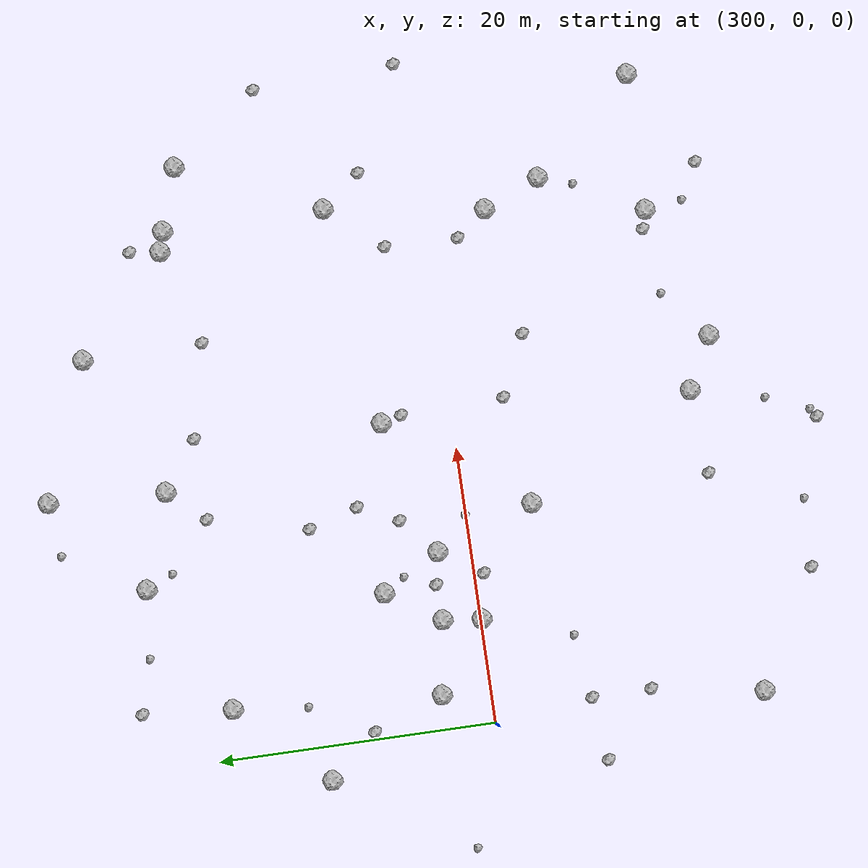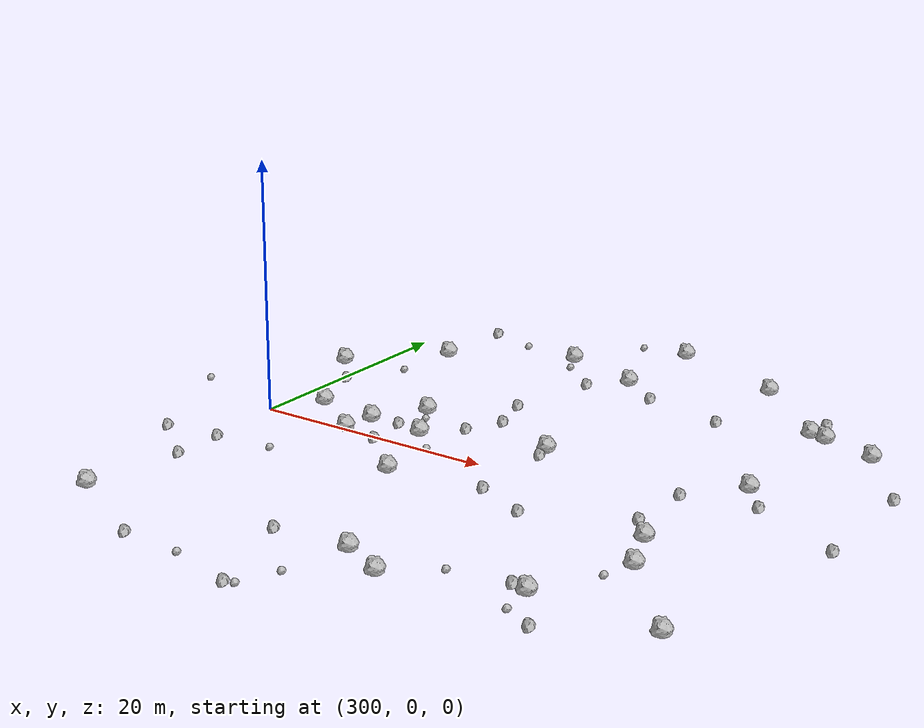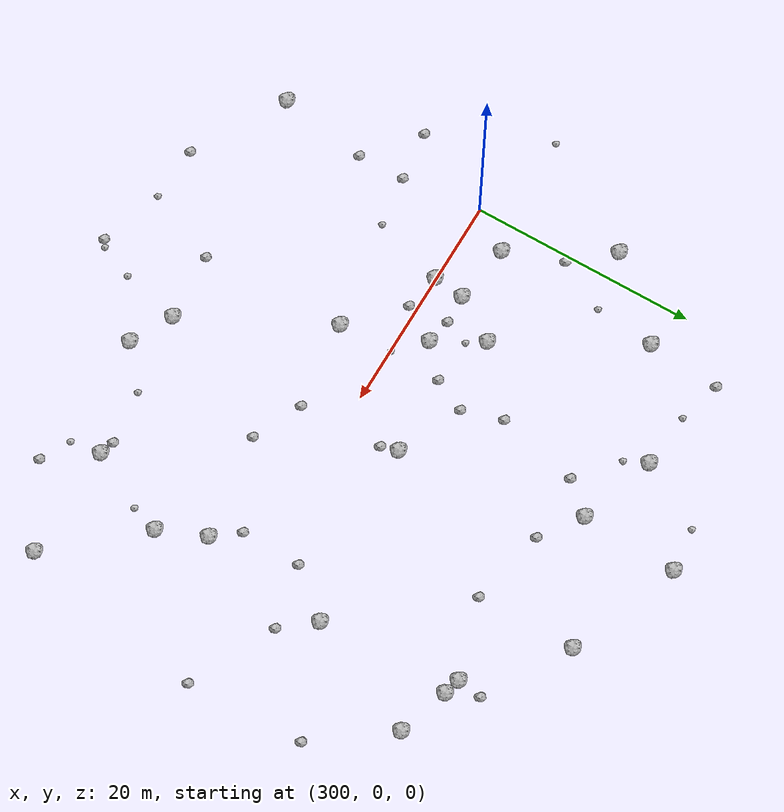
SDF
<sdf version="1.6">
 <world name="default">
  <include><uri>model://sun</uri></include>
  <model name="rock1_8_3">
   <include><uri>model://rock1</uri><pose>325.5360667840325 -19.176329981253016 0.5 0 0 0</pose></include>
  </model>
  <model name="rock1_8_4">
   <include><uri>model://rock1</uri><pose>337.0965668542134 19.217510771627637 0.5 0 0 0</pose></include>
  </model>
  <model name="rock1_8_5">
   <include><uri>model://rock1</uri><pose>297.6387656893085 12.139953859888706 0.5 0 0 0</pose></include>
  </model>
  <model name="rock1_8_6">
   <include><uri>model://rock1</uri><pose>338.6084703517587 -8.564640475429243 0.5 0 0 0</pose></include>
  </model>
  <model name="rock1_8_7">
   <include><uri>model://rock1</uri><pose>338.50501387643857 7.1095136998895185 0.5 0 0 0</pose></include>
  </model>
  <model name="rock1_8_8">
   <include><uri>model://rock1</uri><pose>322.55524619920084 5.112860862548729 0.5 0 0 0</pose></include>
  </model>
  <model name="rock1_8_9">
   <include><uri>model://rock1</uri><pose>330.0800489041929 25.789993478687677 0.5 0 0 0</pose></include>
  </model>
  <model name="rock1_8_10">
   <include><uri>model://rock1</uri><pose>307.91154797282184 2.7123815474220194 0.5 0 0 0</pose></include>
  </model>
  <model name="rock1_8_11">
   <include><uri>model://rock1</uri><pose>338.5454711957595 18.818186615960748 0.5 0 0 0</pose></include>
  </model>
  <model name="rock1_8_12">
   <include><uri>model://rock1</uri><pose>321.79840168310386 -17.268771658646944 0.5 0 0 0</pose></include>
  </model>
  <model name="rock1_8_13">
   <include><uri>model://rock1</uri><pose>315.32713319432776 -4.795768151702678 0.5 0 0 0</pose></include>
  </model>
  <model name="rock1_8_14">
   <include><uri>model://rock1</uri><pose>319.7978172988096 21.159679949803454 0.5 0 0 0</pose></include>
  </model>
  <model name="rock1_8_15">
   <include><uri>model://rock1</uri><pose>299.64401028547604 -19.44883813502558 0.5 0 0 0</pose></include>
  </model>
  <model name="rock1_8_16">
   <include><uri>model://rock1</uri><pose>307.59748977284903 -0.07689318286555391 0.5 0 0 0</pose></include>
  </model>
  <model name="rock1_8_17">
   <include><uri>model://rock1</uri><pose>320.1844808328052 29.647288433401805 0.5 0 0 0</pose></include>
  </model>
  <model name="rock1_8_18">
   <include><uri>model://rock1</uri><pose>345.17324779731337 -16.022033005690435 0.5 0 0 0</pose></include>
  </model>
  <model name="rock1_8_19">
   <include><uri>model://rock1</uri><pose>336.8760851679374 -4.451740943960537 0.5 0 0 0</pose></include>
  </model>
  <model name="rock1_8_20">
   <include><uri>model://rock1</uri><pose>303.6705102415601 18.50020228006747 0.5 0 0 0</pose></include>
  </model>
  <model name="rock1_8_21">
   <include><uri>model://rock1</uri><pose>343.04069357782726 17.36721984499175 0.5 0 0 0</pose></include>
  </model>
  <model name="rock1_8_22">
   <include><uri>model://rock1</uri><pose>335.1999728310768 -15.93421351232158 0.5 0 0 0</pose></include>
  </model>
  <model name="rock1_8_23">
   <include><uri>model://rock1</uri><pose>310.39754033965926 6.5967078686636285 0.5 0 0 0</pose></include>
  </model>
  <model name="rock1_8_24">
   <include><uri>model://rock1</uri><pose>302.58574179871545 3.5104368953219023 0.5 0 0 0</pose></include>
  </model>
  <model name="rock1_8_25">
   <include><uri>model://rock1</uri><pose>312.8036793782777 2.3867870316538173 0.5 0 0 0</pose></include>
  </model>
  <model name="rock1_8_26">
   <include><uri>model://rock1</uri><pose>313.0315651943446 23.462214616910487 0.5 0 0 0</pose></include>
  </model>
  <model name="rock2_8_0">
   <include><uri>model://rock2</uri><pose>296.29768175078283 -7.641451572288432 0.3 0 0 0</pose></include>
  </model>
  <model name="rock2_8_1">
   <include><uri>model://rock2</uri><pose>315.3931679761087 4.812445963037028 0.3 0 0 0</pose></include>
  </model>
  <model name="rock2_8_2">
   <include><uri>model://rock2</uri><pose>318.6273996823745 -26.037837443605806 0.3 0 0 0</pose></include>
  </model>
  <model name="rock2_8_3">
   <include><uri>model://rock2</uri><pose>316.7803391655601 7.723392892719922 0.3 0 0 0</pose></include>
  </model>
  <model name="rock2_8_4">
   <include><uri>model://rock2</uri><pose>335.07898993227315 -2.221460494222349 0.3 0 0 0</pose></include>
  </model>
  <model name="rock2_8_5">
   <include><uri>model://rock2</uri><pose>335.1779027105888 3.1095033278067774 0.3 0 0 0</pose></include>
  </model>
  <model name="rock2_8_6">
   <include><uri>model://rock2</uri><pose>307.93859600072415 -24.068155416894854 0.3 0 0 0</pose></include>
  </model>
  <model name="rock2_8_7">
   <include><uri>model://rock2</uri><pose>315.68087444779087 -17.728555464476454 0.3 0 0 0</pose></include>
  </model>
  <model name="rock2_8_8">
   <include><uri>model://rock2</uri><pose>323.1660328508001 -3.8506759829338506 0.3 0 0 0</pose></include>
  </model>
  <model name="rock2_8_9">
   <include><uri>model://rock2</uri><pose>348.2725915349631 0.638748487631112 0.3 0 0 0</pose></include>
  </model>
  <model name="rock2_8_10">
   <include><uri>model://rock2</uri><pose>317.41648235894303 18.543607310687285 0.3 0 0 0</pose></include>
  </model>
  <model name="rock2_8_11">
   <include><uri>model://rock2</uri><pose>340.77604170015576 4.289560206466966 0.3 0 0 0</pose></include>
  </model>
  <model name="rock2_8_12">
   <include><uri>model://rock2</uri><pose>300.9172523102942 -11.394730701706678 0.3 0 0 0</pose></include>
  </model>
  <model name="rock2_8_13">
   <include><uri>model://rock2</uri><pose>337.35276033160847 21.436201021094433 0.3 0 0 0</pose></include>
  </model>
  <model name="rock2_8_14">
   <include><uri>model://rock2</uri><pose>327.5455741134689 -5.860256015825122 0.3 0 0 0</pose></include>
  </model>
  <model name="rock2_8_15">
   <include><uri>model://rock2</uri><pose>323.3029482097107 18.65693861734613 0.3 0 0 0</pose></include>
  </model>
  <model name="rock2_8_16">
   <include><uri>model://rock2</uri><pose>338.1513018515666 -20.014089114430522 0.3 0 0 0</pose></include>
  </model>
  <model name="rock2_8_17">
   <include><uri>model://rock2</uri><pose>330.115557981999 17.14812758303482 0.3 0 0 0</pose></include>
  </model>
  <model name="rock2_8_18">
   <include><uri>model://rock2</uri><pose>333.8455654678827 -15.56490737508933 0.3 0 0 0</pose></include>
  </model>
  <model name="rock2_8_19">
   <include><uri>model://rock2</uri><pose>300.8768891734408 -7.109551523765202 0.3 0 0 0</pose></include>
  </model>
  <model name="rock2_8_20">
   <include><uri>model://rock2</uri><pose>310.81698522865275 -0.6710308695018483 0.3 0 0 0</pose></include>
  </model>
  <model name="rock2_8_21">
   <include><uri>model://rock2</uri><pose>315.69681450245406 11.305841947594345 0.3 0 0 0</pose></include>
  </model>
  <model name="rock2_8_22">
   <include><uri>model://rock2</uri><pose>300.6160762320567 8.675762515777457 0.3 0 0 0</pose></include>
  </model>
  <model name="rock2_8_23">
   <include><uri>model://rock2</uri><pose>347.82063392457246 10.97270715968098 0.3 0 0 0</pose></include>
  </model>
  <model name="rock2_8_24">
   <include><uri>model://rock2</uri><pose>322.9306477824679 3.637115454513392 0.3 0 0 0</pose></include>
  </model>
  <model name="rock2_8_25">
   <include><uri>model://rock2</uri><pose>310.46222721527226 2.8402154925708913 0.3 0 0 0</pose></include>
  </model>
  <model name="rock2_8_26">
   <include><uri>model://rock2</uri><pose>304.18550445371943 25.037026187534615 0.3 0 0 0</pose></include>
  </model>
  <model name="rock3_8_0">
   <include><uri>model://rock3</uri><pose>319.21388647837097 -25.654908002063202 0.2 0 0 0</pose></include>
  </model>
  <model name="rock3_8_1">
   <include><uri>model://rock3</uri><pose>337.789499952463 -11.043571211219295 0.2 0 0 0</pose></include>
  </model>
  <model name="rock3_8_2">
   <include><uri>model://rock3</uri><pose>315.1259838590998 0.04689543069986968 0.2 0 0 0</pose></include>
  </model>
  <model name="rock3_8_3">
   <include><uri>model://rock3</uri><pose>303.01590264384566 13.125707714754753 0.2 0 0 0</pose></include>
  </model>
  <model name="rock3_8_4">
   <include><uri>model://rock3</uri><pose>328.998491974327 -16.219620115380756 0.2 0 0 0</pose></include>
  </model>
  <model name="rock3_8_5">
   <include><uri>model://rock3</uri><pose>313.85693815515003 21.49785825878621 0.2 0 0 0</pose></include>
  </model>
  <model name="rock3_8_6">
   <include><uri>model://rock3</uri><pose>316.2307129107457 29.240114736289677 0.2 0 0 0</pose></include>
  </model>
  <model name="rock3_8_7">
   <include><uri>model://rock3</uri><pose>320.4842983012379 -22.567618515277662 0.2 0 0 0</pose></include>
  </model>
  <model name="rock3_8_8">
   <include><uri>model://rock3</uri><pose>312.88527315707364 -24.305732763260178 0.2 0 0 0</pose></include>
  </model>
  <model name="rock3_8_9">
   <include><uri>model://rock3</uri><pose>335.52888660752154 -18.68931910307425 0.2 0 0 0</pose></include>
  </model>
  <model name="rock3_8_10">
   <include><uri>model://rock3</uri><pose>311.31053216279355 5.044452342513857 0.2 0 0 0</pose></include>
  </model>
  <model name="rock3_8_11">
   <include><uri>model://rock3</uri><pose>305.4679026273447 -6.492778922992418 0.2 0 0 0</pose></include>
  </model>
  <model name="rock3_8_12">
   <include><uri>model://rock3</uri><pose>308.02880757441585 23.931988535594613 0.2 0 0 0</pose></include>
  </model>
  <model name="rock3_8_13">
   <include><uri>model://rock3</uri><pose>291.34419043926835 2.5071944505011814 0.2 0 0 0</pose></include>
  </model>
 </world>
</sdf>
